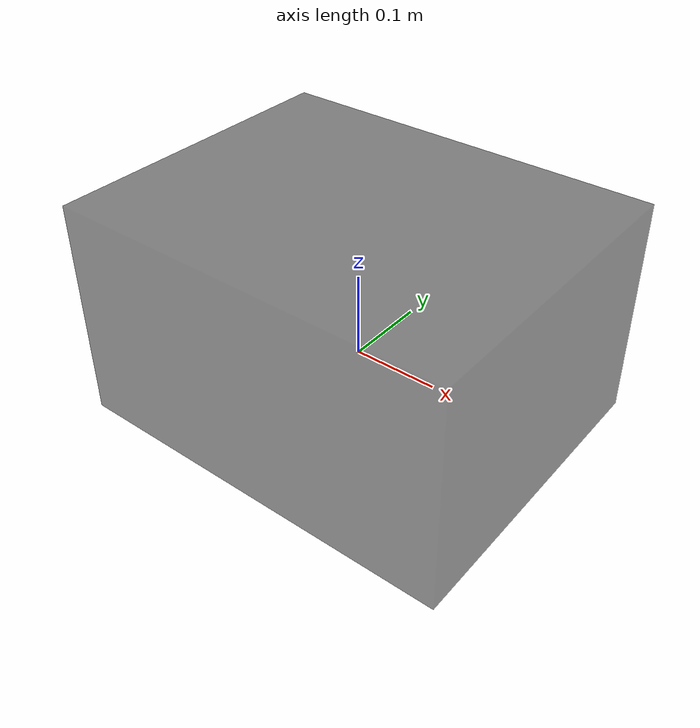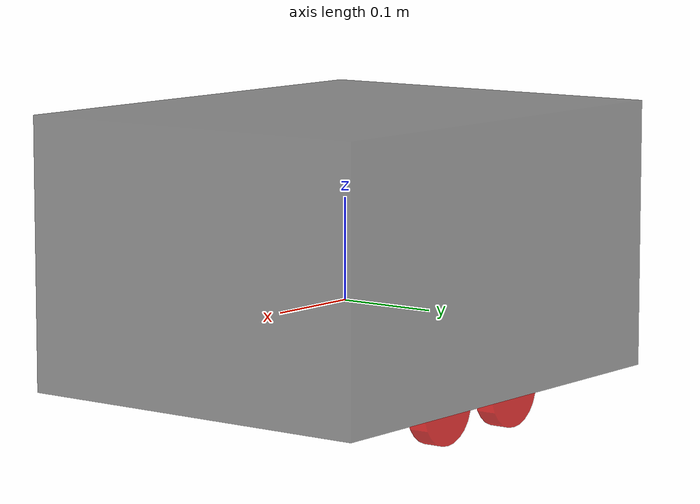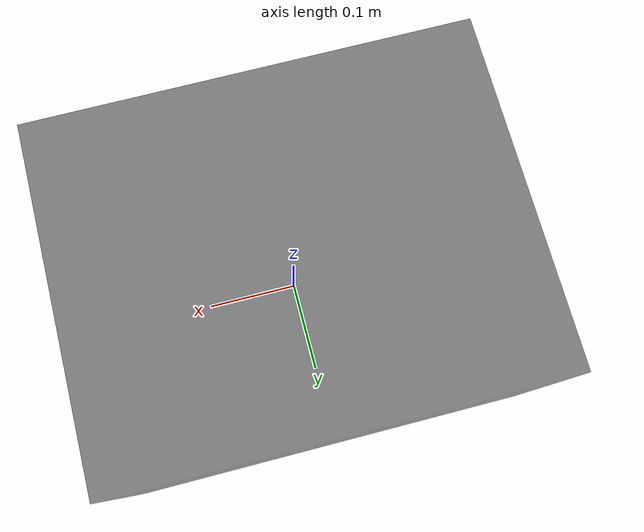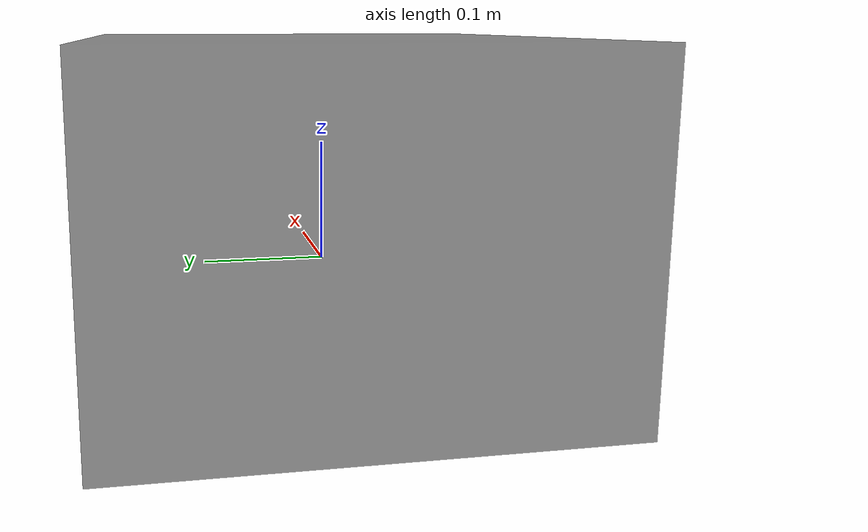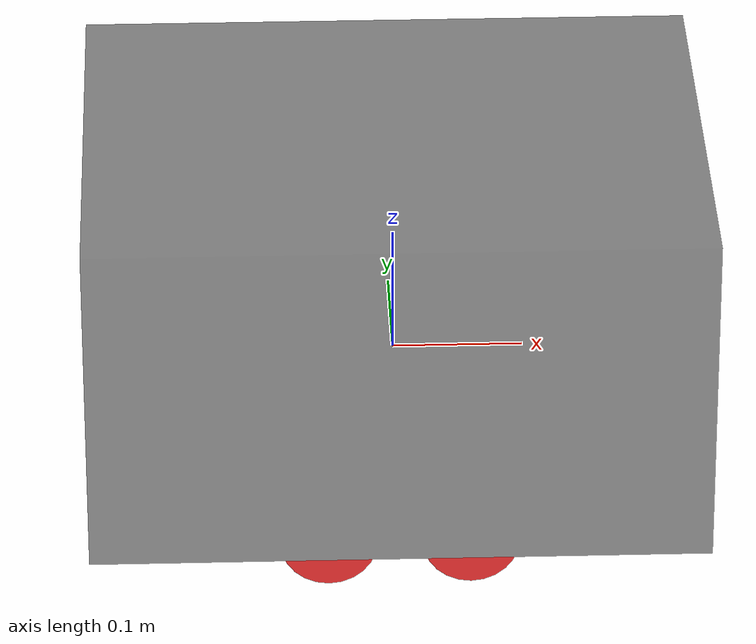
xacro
<robot name="my_robot_base" xmlns:xacro="http://www.ros.org/wiki/xacro">
	<material name="black">
		<color rgba="0 0 0 1" />
	</material>

	<material name="yellow">
		<color rgba="1 0.4 0 1" />
	</material>

	<material name="red">
		<color rgba="1 0 0 1" />
	</material>
	<material name="blue">
		<color rgba="0 0 1 1" />
	</material>

    <xacro:property name="wheel_mass"   value="1"/>
    <xacro:property name="wheel_radius" value="0.037"/>
    <xacro:property name="wheel_length" value="0.02"/>
    <xacro:property name="M_PI" value="3.1415926"/>
    <xacro:property name="base_mass" value="5"/>
    <xacro:property name="wheel_joint_x" value="0.054"/>
    <xacro:property name="wheel_joint_y" value="0.1515"/>
    <xacro:property name="wheel_joint_z" value="0.00"/>
    <xacro:property name="base_a" value="0.47"/>
    <xacro:property name="base_b" value="0.374"/>
    <xacro:property name="base_h" value="0.264"/>

    <xacro:macro name="cylinder_inertial_matrix" params="m r h">
        <inertial>
            <mass value="${m}" />
            <inertia ixx="${m*(3*r*r+h*h)/12}" ixy = "0" ixz = "0"
                iyy="${m*(3*r*r+h*h)/12}" iyz = "0"
                izz="${m*r*r/2}" />
	</inertial>
    </xacro:macro>

    <xacro:macro name="box_inertial_matrix" params="m a b h">
	<inertial>
            <mass value="${m}" />
	    <!-- xacro has a terriable issue, it can't calculate h*h, but a*a -->
	    <inertia ixx="${m*(b*b+0.16*0.16)/12}" ixy="0" ixz="0"
		iyy="${m*(0.16*0.16+a*a)/12}" iyz="0"
		izz="${m*(a*a+b*b)/12}" />
	</inertial>
    </xacro:macro>

    <xacro:property name="footprint_radius" value="0.001" />
    <link name="base_footprint">
        <visual>
            <geometry>
                <sphere radius="${footprint_radius}" />
            </geometry>
        </visual>
    </link>
    <link name="base_link">
        <visual>
            <geometry>
                <box size="${base_a} ${base_b} ${base_h}"/>
            </geometry>

            <origin xyz="0 0 0" rpy="0 0 0" />

            <material name="body_color">
                <color rgba="0 0 0 0.5" />
            </material>
        </visual>
        <collision>
            <origin xyz=" 0 0 0" rpy="0 0 0" />
            <geometry>
                <box size="${base_a} ${base_b} ${base_h}"/>
            </geometry>
        </collision>
        <box_inertial_matrix  m="${base_mass}" a="${base_a}" b="${base_b}" h="{base_h}" />
    </link>

    <joint name="link2footprint" type="fixed">
        <parent link="base_footprint"  />
        <child link="base_link" />
        <origin xyz="0 0 0.055" rpy="0 0 0" />
    </joint>

    <xacro:macro name="wheel" params="prefix x_reflect y_reflect">
        <link name="${prefix}_wheel_link">
            <visual>
                <geometry>
                    <cylinder radius="${wheel_radius}" length = "${wheel_length}"/>
                </geometry>

                <origin xyz="0 0 0" rpy="${M_PI/2} 0 0" />

                <material name="wheel_color">
                    <color rgba="1 0 0 0.8" />
                </material>
            </visual>
            <collision>
                <origin xyz="0 0 0" rpy="${M_PI/2} 0 0" />
                <geometry>
                    <cylinder radius="${wheel_radius}" length = "${wheel_length}"/>
                </geometry>
            </collision>
            <cylinder_inertial_matrix  m="${wheel_mass}" r="${wheel_radius}" h="${wheel_length}" />
        </link>

        <joint name="${prefix}_wheel_joint" type="continuous">
            <parent link="base_link"/>
            <child link="${prefix}_wheel_link"/>
            <origin xyz="${x_reflect*wheel_joint_x} ${y_reflect*wheel_joint_y} ${-base_h/2}" rpy="0 0 0"/>
            <axis xyz="0 1 0"/>
        </joint>

    </xacro:macro>

    <xacro:macro name="cylinder_inertial_matrix" params="m r h">
        <inertial>
            <mass value="${m}" />
            <inertia ixx="${m*(3*r*r+h*h)/12}" ixy = "0" ixz = "0"
                iyy="${m*(3*r*r+h*h)/12}" iyz = "0"
                izz="${m*r*r/2}" />
	</inertial>
    </xacro:macro>

    <xacro:macro name="box_inertial_matrix" params="m a b h">
        <inertial>
             <mass value="${m}" />
	     <!-- xacro has a terriable issue, it can't calculate h*h, but a*a -->
	     <inertia ixx="${m*(b*b+0.16*0.16)/12}" ixy="0" ixz="0"
		 iyy="${m*(0.16*0.16+a*a)/12}" iyz="0"
		 izz="${m*(a*a+b*b)/12}" />
	</inertial>
    </xacro:macro>

        <wheel prefix="left_front"  x_reflect="1" y_reflect="1" />
        <wheel prefix="right_front" x_reflect="1" y_reflect="-1" />
        <wheel prefix="left_back"  x_reflect="-1" y_reflect="1" />
        <wheel prefix="right_back" x_reflect="-1" y_reflect="-1" />

</robot>
